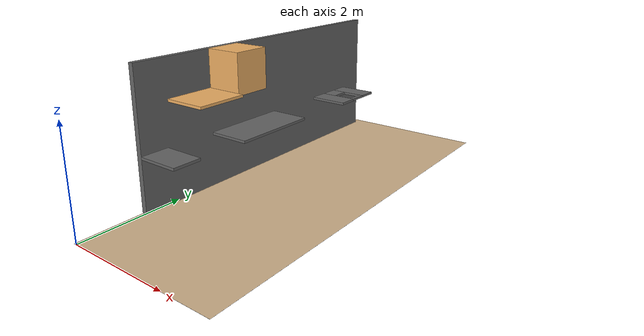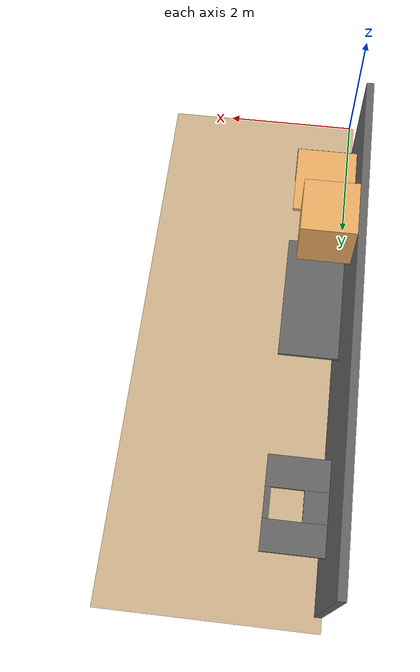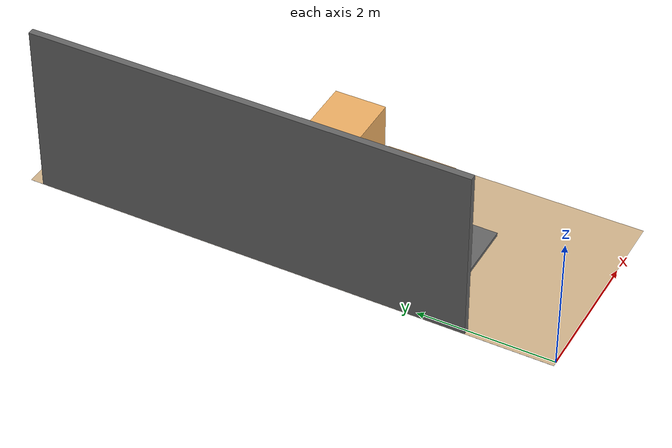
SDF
<sdf version="1.9">
 <world name="test_full_kitchen_230121_151600_original_3">
  <model name="floor1">
   <static>true</static>
   <pose>1.431 4.0 -0.002 0.0 -0.0 0.0</pose>
   <link name="box">
    <collision name="box_collision"><geometry><box><size>3.0 8.0 0.001</size></box></geometry></collision>
    <visual name="box_visual">
     <geometry><box><size>3.0 8.0 0.001</size></box></geometry>
     <material><diffuse>0.824 0.706 0.549 1</diffuse></material>
    </visual>
   </link>
  </model>
  <model name="sink_counter_left">
   <static>true</static>
   <pose>0.435 6.203 1.025 0.0 -0.0 0.0</pose>
   <link name="box">
    <collision name="box_collision"><geometry><box><size>0.807 0.413 0.05</size></box></geometry></collision>
    <visual name="box_visual">
     <geometry><box><size>0.807 0.413 0.05</size></box></geometry>
     <material><diffuse>0.4 0.4 0.4 1</diffuse></material>
    </visual>
   </link>
  </model>
  <model name="sink_counter_right">
   <static>true</static>
   <pose>0.435 7.0 1.025 0.0 -0.0 0.0</pose>
   <link name="box">
    <collision name="box_collision"><geometry><box><size>0.807 0.394 0.05</size></box></geometry></collision>
    <visual name="box_visual">
     <geometry><box><size>0.807 0.394 0.05</size></box></geometry>
     <material><diffuse>0.4 0.4 0.4 1</diffuse></material>
    </visual>
   </link>
  </model>
  <model name="sink_counter_front">
   <static>true</static>
   <pose>0.799 6.606 1.025 0.0 -0.0 0.0</pose>
   <link name="box">
    <collision name="box_collision"><geometry><box><size>0.077 0.393 0.05</size></box></geometry></collision>
    <visual name="box_visual">
     <geometry><box><size>0.077 0.393 0.05</size></box></geometry>
     <material><diffuse>0.4 0.4 0.4 1</diffuse></material>
    </visual>
   </link>
  </model>
  <model name="sink_counter_back">
   <static>true</static>
   <pose>0.186 6.606 1.025 0.0 -0.0 0.0</pose>
   <link name="box">
    <collision name="box_collision"><geometry><box><size>0.309 0.393 0.05</size></box></geometry></collision>
    <visual name="box_visual">
     <geometry><box><size>0.309 0.393 0.05</size></box></geometry>
     <material><diffuse>0.4 0.4 0.4 1</diffuse></material>
    </visual>
   </link>
  </model>
  <model name="wall">
   <static>true</static>
   <pose>-0.019 4.537 1.309 0.0 -0.0 0.0</pose>
   <link name="box">
    <collision name="box_collision"><geometry><box><size>0.1 6.528 2.618</size></box></geometry></collision>
    <visual name="box_visual">
     <geometry><box><size>0.1 6.528 2.618</size></box></geometry>
     <material><diffuse>0.4 0.4 0.4 1</diffuse></material>
    </visual>
   </link>
  </model>
  <model name="counter#1">
   <static>true</static>
   <pose>0.435 3.747 1.025 0.0 -0.0 0.0</pose>
   <link name="box">
    <collision name="box_collision"><geometry><box><size>0.807 1.749 0.05</size></box></geometry></collision>
    <visual name="box_visual">
     <geometry><box><size>0.807 1.749 0.05</size></box></geometry>
     <material><diffuse>0.4 0.4 0.4 1</diffuse></material>
    </visual>
   </link>
  </model>
  <model name="counter#2">
   <static>true</static>
   <pose>0.435 1.553 1.025 0.0 -0.0 0.0</pose>
   <link name="box">
    <collision name="box_collision"><geometry><box><size>0.807 0.559 0.05</size></box></geometry></collision>
    <visual name="box_visual">
     <geometry><box><size>0.807 0.559 0.05</size></box></geometry>
     <material><diffuse>0.4 0.4 0.4 1</diffuse></material>
    </visual>
   </link>
  </model>
  <model name="counter_back#1">
   <static>true</static>
   <pose>0.031 1.553 1.025 0.0 -0.0 0.0</pose>
   <link name="box">
    <collision name="box_collision"><geometry><box><size>0.001 0.559 0.05</size></box></geometry></collision>
    <visual name="box_visual">
     <geometry><box><size>0.001 0.559 0.05</size></box></geometry>
     <material><diffuse>0.4 0.4 0.4 1</diffuse></material>
    </visual>
   </link>
  </model>
  <model name="counter_back#2">
   <static>true</static>
   <pose>0.031 3.747 1.025 0.0 -0.0 0.0</pose>
   <link name="box">
    <collision name="box_collision"><geometry><box><size>0.001 1.749 0.05</size></box></geometry></collision>
    <visual name="box_visual">
     <geometry><box><size>0.001 1.749 0.05</size></box></geometry>
     <material><diffuse>0.4 0.4 0.4 1</diffuse></material>
    </visual>
   </link>
  </model>
  <model name="counter_back#3">
   <static>true</static>
   <pose>0.031 6.596 1.025 0.0 -0.0 0.0</pose>
   <link name="box">
    <collision name="box_collision"><geometry><box><size>0.001 1.2 0.05</size></box></geometry></collision>
    <visual name="box_visual">
     <geometry><box><size>0.001 1.2 0.05</size></box></geometry>
     <material><diffuse>0.4 0.4 0.4 1</diffuse></material>
    </visual>
   </link>
  </model>
  <model name="cabinetupper_filler">
   <static>true</static>
   <pose>0.381 3.237 2.234 0.0 -0.0 0.0</pose>
   <link name="box">
    <collision name="box_collision"><geometry><box><size>0.701 0.723 0.769</size></box></geometry></collision>
    <visual name="box_visual">
     <geometry><box><size>0.701 0.723 0.769</size></box></geometry>
     <material><diffuse>0.937 0.69 0.392 1</diffuse></material>
    </visual>
   </link>
  </model>
  <model name="shelf_lower">
   <static>true</static>
   <pose>0.434 2.387 1.875 0.0 -0.0 0.0</pose>
   <link name="box">
    <collision name="box_collision"><geometry><box><size>0.807 0.97 0.05</size></box></geometry></collision>
    <visual name="box_visual">
     <geometry><box><size>0.807 0.97 0.05</size></box></geometry>
     <material><diffuse>0.937 0.69 0.392 1</diffuse></material>
    </visual>
   </link>
  </model>
 </world>
</sdf>
